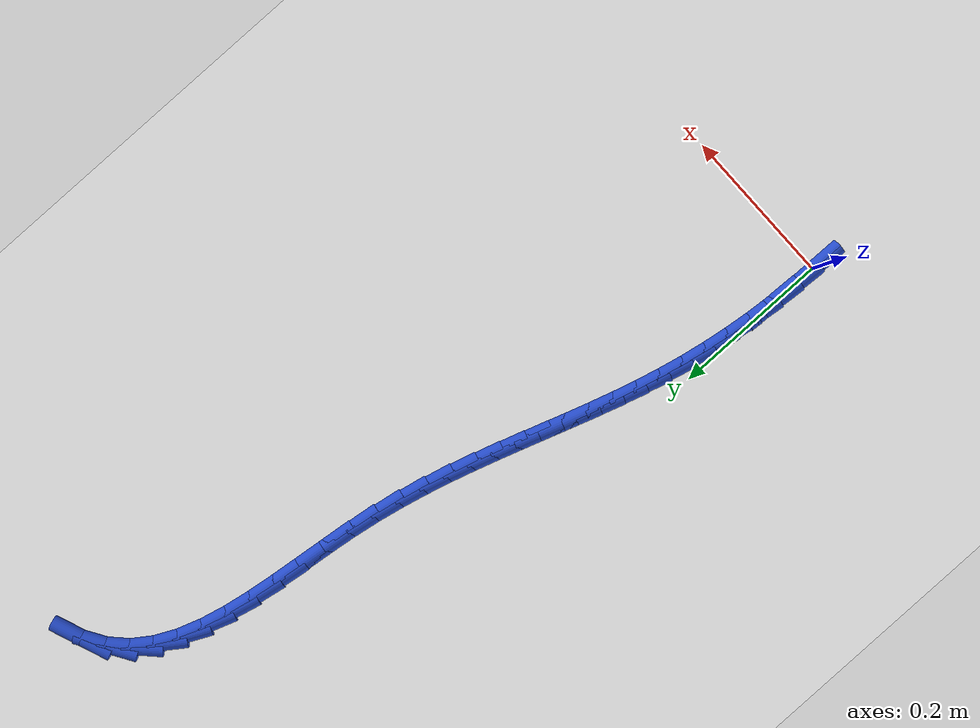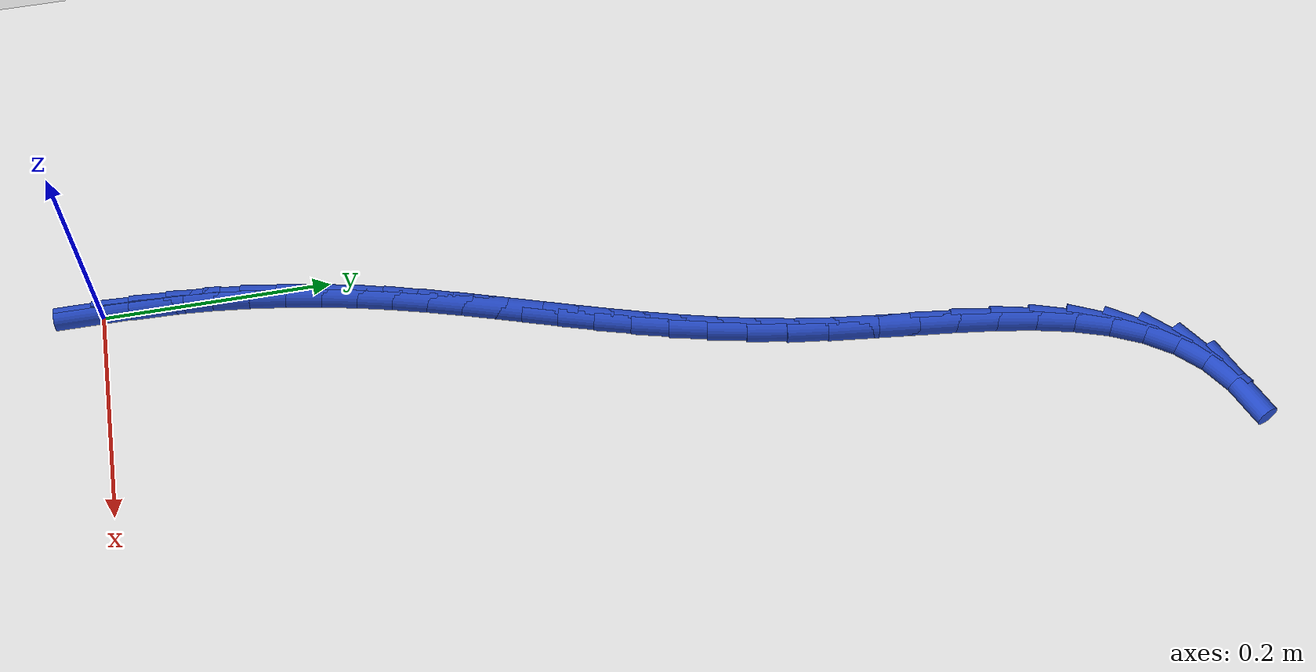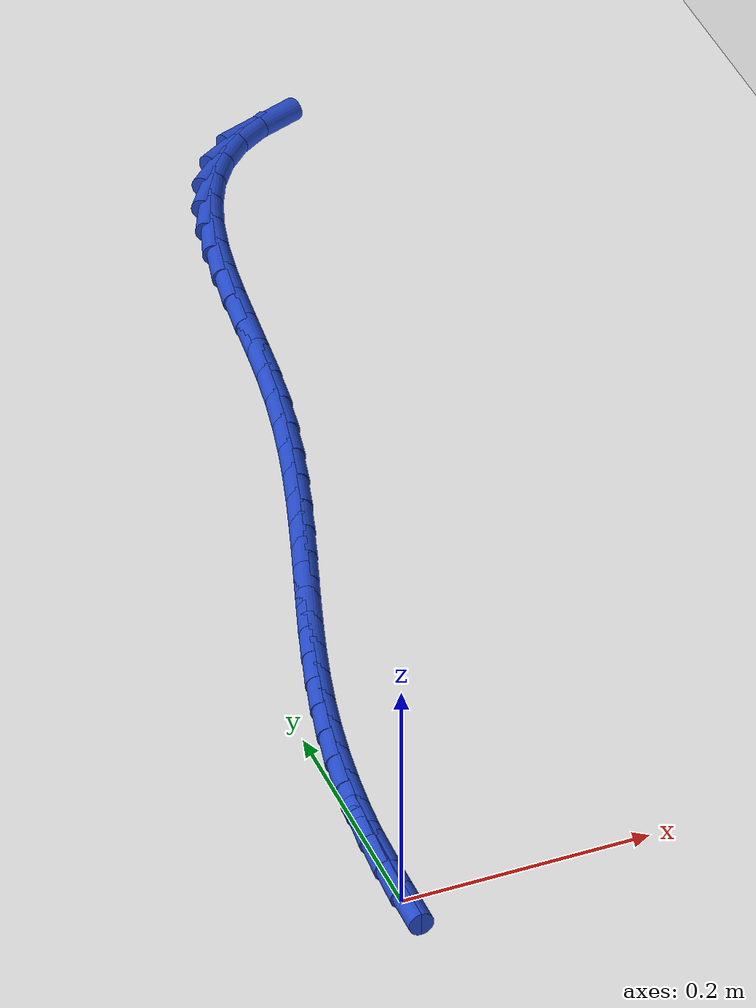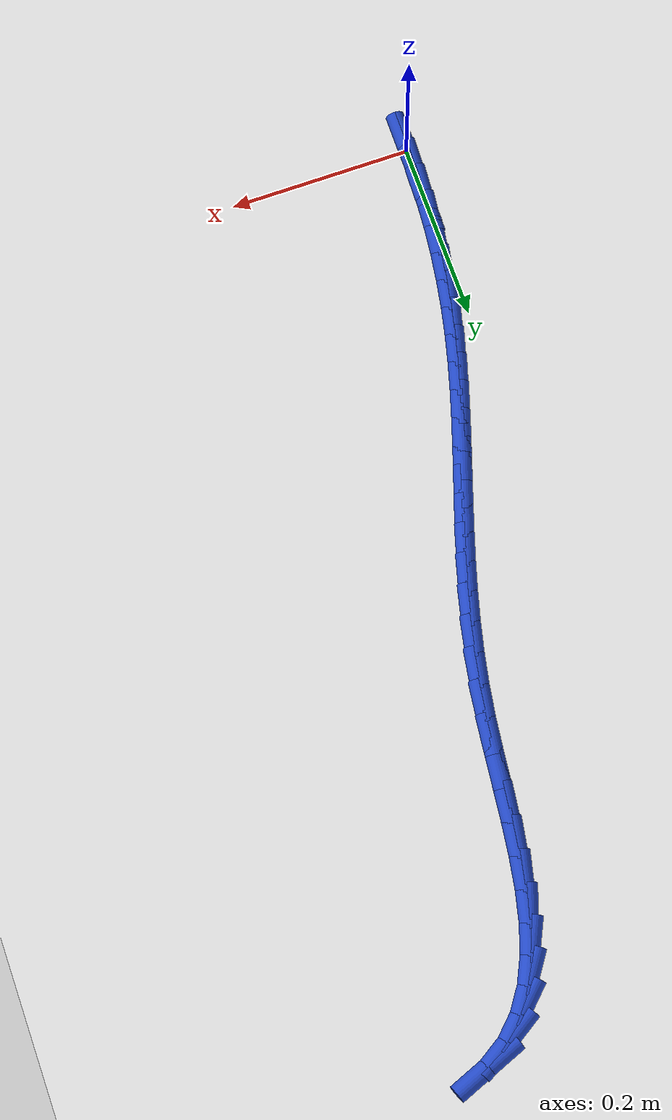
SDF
<sdf version="1.6">
 <world name="default">
  <model name="ground_plane">
   <static>1</static>
   <link name="link">
    <collision name="collision">
     <geometry><plane><normal>0 0 1</normal><size>100 100</size></plane></geometry>
     <surface><friction><ode><mu>100</mu><mu2>50</mu2></ode></friction></surface>
    </collision>
    <visual name="visual">
     <cast_shadows>0</cast_shadows>
     <geometry><plane><normal>0 0 1</normal><size>100 100</size></plane></geometry>
     <material>
      <script><uri>file://media/materials/scripts/gazebo.material</uri><name>Gazebo/WhiteGlow</name></script>
     </material>
    </visual>
   </link>
  </model>
  <model name="line">
   <link name="link_0">
    <pose>-7.37257477290143e-18 -5.551115123125783e-17 0.01 0 1.57 1.5632704173522833</pose>
    <collision name="collision">
     <geometry><cylinder><radius>0.01</radius><length>0.08</length></cylinder></geometry>
    </collision>
    <visual name="visual">
     <material>
      <script><name>Gazebo/Blue</name><uri>file://media/materials/scripts/gazebo.material</uri></script>
     </material>
     <geometry><cylinder><radius>0.01</radius><length>0.08</length></cylinder></geometry>
    </visual>
   </link>
   <link name="link_1">
    <pose>0.0002456686995575456 0.03264244185297479 0.01 0 1.57 1.5268009838545717</pose>
    <collision name="collision">
     <geometry><cylinder><radius>0.01</radius><length>0.08</length></cylinder></geometry>
    </collision>
    <visual name="visual">
     <material>
      <script><name>Gazebo/Blue</name><uri>file://media/materials/scripts/gazebo.material</uri></script>
     </material>
     <geometry><cylinder><radius>0.01</radius><length>0.08</length></cylinder></geometry>
    </visual>
   </link>
   <link name="link_2">
    <pose>0.0016749753505119883 0.06510915883912491 0.01 0 1.57 1.4911623278161554</pose>
    <collision name="collision">
     <geometry><cylinder><radius>0.01</radius><length>0.08</length></cylinder></geometry>
    </collision>
    <visual name="visual">
     <material>
      <script><name>Gazebo/Blue</name><uri>file://media/materials/scripts/gazebo.material</uri></script>
     </material>
     <geometry><cylinder><radius>0.01</radius><length>0.08</length></cylinder></geometry>
    </visual>
   </link>
   <link name="link_3">
    <pose>0.00424755348249707 0.09734586426357598 0.01 0 1.57 1.4562697613169648</pose>
    <collision name="collision">
     <geometry><cylinder><radius>0.01</radius><length>0.08</length></cylinder></geometry>
    </collision>
    <visual name="visual">
     <material>
      <script><name>Gazebo/Blue</name><uri>file://media/materials/scripts/gazebo.material</uri></script>
     </material>
     <geometry><cylinder><radius>0.01</radius><length>0.08</length></cylinder></geometry>
    </visual>
   </link>
   <link name="link_4">
    <pose>0.007923036625146547 0.12929827143145375 0.01 0 1.57 1.4220317220771173</pose>
    <collision name="collision">
     <geometry><cylinder><radius>0.01</radius><length>0.08</length></cylinder></geometry>
    </collision>
    <visual name="visual">
     <material>
      <script><name>Gazebo/Blue</name><uri>file://media/materials/scripts/gazebo.material</uri></script>
     </material>
     <geometry><cylinder><radius>0.01</radius><length>0.08</length></cylinder></geometry>
    </visual>
   </link>
   <link name="link_5">
    <pose>0.012661058308094168 0.16091209364788384 0.01 0 1.57 1.3883502762425861</pose>
    <collision name="collision">
     <geometry><cylinder><radius>0.01</radius><length>0.08</length></cylinder></geometry>
    </collision>
    <visual name="visual">
     <material>
      <script><name>Gazebo/Blue</name><uri>file://media/materials/scripts/gazebo.material</uri></script>
     </material>
     <geometry><cylinder><radius>0.01</radius><length>0.08</length></cylinder></geometry>
    </visual>
   </link>
   <link name="link_6">
    <pose>0.018421252060973694 0.19213304421799213 0.01 0 1.57 1.3551213344674293</pose>
    <collision name="collision">
     <geometry><cylinder><radius>0.01</radius><length>0.08</length></cylinder></geometry>
    </collision>
    <visual name="visual">
     <material>
      <script><name>Gazebo/Blue</name><uri>file://media/materials/scripts/gazebo.material</uri></script>
     </material>
     <geometry><cylinder><radius>0.01</radius><length>0.08</length></cylinder></geometry>
    </visual>
   </link>
   <link name="link_7">
    <pose>0.025163251369510278 0.22290683650883564 0.01 0 1.57 1.3231857685717456</pose>
    <collision name="collision">
     <geometry><cylinder><radius>0.01</radius><length>0.08</length></cylinder></geometry>
    </collision>
    <visual name="visual">
     <material>
      <script><name>Gazebo/Blue</name><uri>file://media/materials/scripts/gazebo.material</uri></script>
     </material>
     <geometry><cylinder><radius>0.01</radius><length>0.08</length></cylinder></geometry>
    </visual>
   </link>
   <link name="link_8">
    <pose>0.032824101511070305 0.25321104376012543 0.01 0 1.57 1.2963018387225682</pose>
    <collision name="collision">
     <geometry><cylinder><radius>0.01</radius><length>0.08</length></cylinder></geometry>
    </collision>
    <visual name="visual">
     <material>
      <script><name>Gazebo/Blue</name><uri>file://media/materials/scripts/gazebo.material</uri></script>
     </material>
     <geometry><cylinder><radius>0.01</radius><length>0.08</length></cylinder></geometry>
    </visual>
   </link>
   <link name="link_9">
    <pose>0.041253855787582 0.2831459383303042 0.01 0 1.57 1.2756622982968644</pose>
    <collision name="collision">
     <geometry><cylinder><radius>0.01</radius><length>0.08</length></cylinder></geometry>
    </collision>
    <visual name="visual">
     <material>
      <script><name>Gazebo/Blue</name><uri>file://media/materials/scripts/gazebo.material</uri></script>
     </material>
     <geometry><cylinder><radius>0.01</radius><length>0.08</length></cylinder></geometry>
    </visual>
   </link>
   <link name="link_10">
    <pose>0.05028162869394227 0.31284132602796483 0.01 0 1.57 1.26147710530987</pose>
    <collision name="collision">
     <geometry><cylinder><radius>0.01</radius><length>0.08</length></cylinder></geometry>
    </collision>
    <visual name="visual">
     <material>
      <script><name>Gazebo/Blue</name><uri>file://media/materials/scripts/gazebo.material</uri></script>
     </material>
     <geometry><cylinder><radius>0.01</radius><length>0.08</length></cylinder></geometry>
    </visual>
   </link>
   <link name="link_11">
    <pose>0.05973653472504801 0.3424270126616997 0.01 0 1.57 1.253839580025563</pose>
    <collision name="collision">
     <geometry><cylinder><radius>0.01</radius><length>0.08</length></cylinder></geometry>
    </collision>
    <visual name="visual">
     <material>
      <script><name>Gazebo/Blue</name><uri>file://media/materials/scripts/gazebo.material</uri></script>
     </material>
     <geometry><cylinder><radius>0.01</radius><length>0.08</length></cylinder></geometry>
    </visual>
   </link>
   <link name="link_12">
    <pose>0.06944768837579615 0.3720328040401017 0.01 0 1.57 1.252741911935959</pose>
    <collision name="collision">
     <geometry><cylinder><radius>0.01</radius><length>0.08</length></cylinder></geometry>
    </collision>
    <visual name="visual">
     <material>
      <script><name>Gazebo/Blue</name><uri>file://media/materials/scripts/gazebo.material</uri></script>
     </material>
     <geometry><cylinder><radius>0.01</radius><length>0.08</length></cylinder></geometry>
    </visual>
   </link>
   <link name="link_13">
    <pose>0.07924420414108356 0.40178850597176335 0.01 0 1.57 1.2580864603284783</pose>
    <collision name="collision">
     <geometry><cylinder><radius>0.01</radius><length>0.08</length></cylinder></geometry>
    </collision>
    <visual name="visual">
     <material>
      <script><name>Gazebo/Blue</name><uri>file://media/materials/scripts/gazebo.material</uri></script>
     </material>
     <geometry><cylinder><radius>0.01</radius><length>0.08</length></cylinder></geometry>
    </visual>
   </link>
   <link name="link_14">
    <pose>0.08895519651580716 0.4318239242652773 0.01 0 1.57 1.269691735281175</pose>
    <collision name="collision">
     <geometry><cylinder><radius>0.01</radius><length>0.08</length></cylinder></geometry>
    </collision>
    <visual name="visual">
     <material>
      <script><name>Gazebo/Blue</name><uri>file://media/materials/scripts/gazebo.material</uri></script>
     </material>
     <geometry><cylinder><radius>0.01</radius><length>0.08</length></cylinder></geometry>
    </visual>
   </link>
   <link name="link_15">
    <pose>0.09840977999486385 0.4622688647292362 0.01 0 1.57 1.2872934140344503</pose>
    <collision name="collision">
     <geometry><cylinder><radius>0.01</radius><length>0.08</length></cylinder></geometry>
    </collision>
    <visual name="visual">
     <material>
      <script><name>Gazebo/Blue</name><uri>file://media/materials/scripts/gazebo.material</uri></script>
     </material>
     <geometry><cylinder><radius>0.01</radius><length>0.08</length></cylinder></geometry>
    </visual>
   </link>
   <link name="link_16">
    <pose>0.10743706907315051 0.4932531331722326 0.01 0 1.57 1.3105419493037958</pose>
    <collision name="collision">
     <geometry><cylinder><radius>0.01</radius><length>0.08</length></cylinder></geometry>
    </collision>
    <visual name="visual">
     <material>
      <script><name>Gazebo/Blue</name><uri>file://media/materials/scripts/gazebo.material</uri></script>
     </material>
     <geometry><cylinder><radius>0.01</radius><length>0.08</length></cylinder></geometry>
    </visual>
   </link>
   <link name="link_17">
    <pose>0.11586617824556412 0.5249065354028596 0.01 0 1.57 1.338999227544284</pose>
    <collision name="collision">
     <geometry><cylinder><radius>0.01</radius><length>0.08</length></cylinder></geometry>
    </collision>
    <visual name="visual">
     <material>
      <script><name>Gazebo/Blue</name><uri>file://media/materials/scripts/gazebo.material</uri></script>
     </material>
     <geometry><cylinder><radius>0.01</radius><length>0.08</length></cylinder></geometry>
    </visual>
   </link>
   <link name="link_18">
    <pose>0.12352622200700154 0.5573588772297094 0.01 0 1.57 1.3721372610559748</pose>
    <collision name="collision">
     <geometry><cylinder><radius>0.01</radius><length>0.08</length></cylinder></geometry>
    </collision>
    <visual name="visual">
     <material>
      <script><name>Gazebo/Blue</name><uri>file://media/materials/scripts/gazebo.material</uri></script>
     </material>
     <geometry><cylinder><radius>0.01</radius><length>0.08</length></cylinder></geometry>
    </visual>
   </link>
   <link name="link_19">
    <pose>0.1302463148523597 0.590739964461375 0.01 0 1.57 1.4093081269379566</pose>
    <collision name="collision">
     <geometry><cylinder><radius>0.01</radius><length>0.08</length></cylinder></geometry>
    </collision>
    <visual name="visual">
     <material>
      <script><name>Gazebo/Blue</name><uri>file://media/materials/scripts/gazebo.material</uri></script>
     </material>
     <geometry><cylinder><radius>0.01</radius><length>0.08</length></cylinder></geometry>
    </visual>
   </link>
   <link name="link_20">
    <pose>0.1358566157395685 0.6251786825634659 0.01 0 1.57 1.4431699990393103</pose>
    <collision name="collision">
     <geometry><cylinder><radius>0.01</radius><length>0.08</length></cylinder></geometry>
    </collision>
    <visual name="visual">
     <material>
      <script><name>Gazebo/Blue</name><uri>file://media/materials/scripts/gazebo.material</uri></script>
     </material>
     <geometry><cylinder><radius>0.01</radius><length>0.08</length></cylinder></geometry>
    </visual>
   </link>
   <link name="link_21">
    <pose>0.14040370964791052 0.6606132102329533 0.01 0 1.57 1.4596717704684488</pose>
    <collision name="collision">
     <geometry><cylinder><radius>0.01</radius><length>0.08</length></cylinder></geometry>
    </collision>
    <visual name="visual">
     <material>
      <script><name>Gazebo/Blue</name><uri>file://media/materials/scripts/gazebo.material</uri></script>
     </material>
     <geometry><cylinder><radius>0.01</radius><length>0.08</length></cylinder></geometry>
    </visual>
   </link>
   <link name="link_22">
    <pose>0.1444146238691144 0.6965583778080858 0.01 0 1.57 1.458049661329926</pose>
    <collision name="collision">
     <geometry><cylinder><radius>0.01</radius><length>0.08</length></cylinder></geometry>
    </collision>
    <visual name="visual">
     <material>
      <script><name>Gazebo/Blue</name><uri>file://media/materials/scripts/gazebo.material</uri></script>
     </material>
     <geometry><cylinder><radius>0.01</radius><length>0.08</length></cylinder></geometry>
    </visual>
   </link>
   <link name="link_23">
    <pose>0.14848101732431127 0.7324720645769656 0.01 0 1.57 1.4382025285937923</pose>
    <collision name="collision">
     <geometry><cylinder><radius>0.01</radius><length>0.08</length></cylinder></geometry>
    </collision>
    <visual name="visual">
     <material>
      <script><name>Gazebo/Blue</name><uri>file://media/materials/scripts/gazebo.material</uri></script>
     </material>
     <geometry><cylinder><radius>0.01</radius><length>0.08</length></cylinder></geometry>
    </visual>
   </link>
   <link name="link_24">
    <pose>0.15319454893463189 0.7678121498276936 0.01 0 1.57 1.398597980906987</pose>
    <collision name="collision">
     <geometry><cylinder><radius>0.01</radius><length>0.08</length></cylinder></geometry>
    </collision>
    <visual name="visual">
     <material>
      <script><name>Gazebo/Blue</name><uri>file://media/materials/scripts/gazebo.material</uri></script>
     </material>
     <geometry><cylinder><radius>0.01</radius><length>0.08</length></cylinder></geometry>
    </visual>
   </link>
   <link name="link_25">
    <pose>0.15914687762120733 0.8020365128483721 0.01 0 1.57 1.336214921331327</pose>
    <collision name="collision">
     <geometry><cylinder><radius>0.01</radius><length>0.08</length></cylinder></geometry>
    </collision>
    <visual name="visual">
     <material>
      <script><name>Gazebo/Blue</name><uri>file://media/materials/scripts/gazebo.material</uri></script>
     </material>
     <geometry><cylinder><radius>0.01</radius><length>0.08</length></cylinder></geometry>
    </visual>
   </link>
   <link name="link_26">
    <pose>0.16692966230516856 0.8346030329271025 0.01 0 1.57 1.246596308479444</pose>
    <collision name="collision">
     <geometry><cylinder><radius>0.01</radius><length>0.08</length></cylinder></geometry>
    </collision>
    <visual name="visual">
     <material>
      <script><name>Gazebo/Blue</name><uri>file://media/materials/scripts/gazebo.material</uri></script>
     </material>
     <geometry><cylinder><radius>0.01</radius><length>0.08</length></cylinder></geometry>
    </visual>
   </link>
   <link name="link_27">
    <pose>0.1771345619076465 0.8649695893519866 0.01 0 1.57 1.1244854717149042</pose>
    <collision name="collision">
     <geometry><cylinder><radius>0.01</radius><length>0.08</length></cylinder></geometry>
    </collision>
    <visual name="visual">
     <material>
      <script><name>Gazebo/Blue</name><uri>file://media/materials/scripts/gazebo.material</uri></script>
     </material>
     <geometry><cylinder><radius>0.01</radius><length>0.08</length></cylinder></geometry>
    </visual>
   </link>
   <link name="link_28">
    <pose>0.19035323534977217 0.8925940614111261 0.01 0 1.57 0.9659976913463877</pose>
    <collision name="collision">
     <geometry><cylinder><radius>0.01</radius><length>0.08</length></cylinder></geometry>
    </collision>
    <visual name="visual">
     <material>
      <script><name>Gazebo/Blue</name><uri>file://media/materials/scripts/gazebo.material</uri></script>
     </material>
     <geometry><cylinder><radius>0.01</radius><length>0.08</length></cylinder></geometry>
    </visual>
   </link>
   <link name="link_29">
    <pose>0.20717734155267659 0.9169343283926229 0.01 0 1.57 0.7731860584852928</pose>
    <collision name="collision">
     <geometry><cylinder><radius>0.01</radius><length>0.08</length></cylinder></geometry>
    </collision>
    <visual name="visual">
     <material>
      <script><name>Gazebo/Blue</name><uri>file://media/materials/scripts/gazebo.material</uri></script>
     </material>
     <geometry><cylinder><radius>0.01</radius><length>0.08</length></cylinder></geometry>
    </visual>
   </link>
   <link name="link_30">
    <pose>0.22819853943749063 0.9374482695845785 0.01 0 1.57 0.5593678392755799</pose>
    <collision name="collision">
     <geometry><cylinder><radius>0.01</radius><length>0.08</length></cylinder></geometry>
    </collision>
    <visual name="visual">
     <material>
      <script><name>Gazebo/Blue</name><uri>file://media/materials/scripts/gazebo.material</uri></script>
     </material>
     <geometry><cylinder><radius>0.01</radius><length>0.08</length></cylinder></geometry>
    </visual>
   </link>
   <link name="link_31">
    <pose>0.25399944191988844 0.9536014210547102 0.01 0 1.57 0.3672177687692208</pose>
    <collision name="collision">
     <geometry><cylinder><radius>0.01</radius><length>0.08</length></cylinder></geometry>
    </collision>
    <visual name="visual">
     <material>
      <script><name>Gazebo/Blue</name><uri>file://media/materials/scripts/gazebo.material</uri></script>
     </material>
     <geometry><cylinder><radius>0.01</radius><length>0.08</length></cylinder></geometry>
    </visual>
   </link>
   <link name="link_280">
    <pose>-2.211772431870429e-17 4.85722573273506e-17 0.01 0 1.57 1.5624025132909483</pose>
    <collision name="collision">
     <geometry><cylinder><radius>0.01</radius><length>0.08</length></cylinder></geometry>
    </collision>
    <visual name="visual">
     <material>
      <script><name>Gazebo/Blue</name><uri>file://media/materials/scripts/gazebo.material</uri></script>
     </material>
     <geometry><cylinder><radius>0.01</radius><length>0.08</length></cylinder></geometry>
    </visual>
   </link>
   <link name="link_281">
    <pose>0.0002738551189871855 0.032625062165109256 0.01 0 1.57 1.5205493195987925</pose>
    <collision name="collision">
     <geometry><cylinder><radius>0.01</radius><length>0.08</length></cylinder></geometry>
    </collision>
    <visual name="visual">
     <material>
      <script><name>Gazebo/Blue</name><uri>file://media/materials/scripts/gazebo.material</uri></script>
     </material>
     <geometry><cylinder><radius>0.01</radius><length>0.08</length></cylinder></geometry>
    </visual>
   </link>
   <link name="link_282">
    <pose>0.0019004667059492027 0.06497012133620057 0.01 0 1.57 1.541553270080204</pose>
    <collision name="collision">
     <geometry><cylinder><radius>0.01</radius><length>0.08</length></cylinder></geometry>
    </collision>
    <visual name="visual">
     <material>
      <script><name>Gazebo/Blue</name><uri>file://media/materials/scripts/gazebo.material</uri></script>
     </material>
     <geometry><cylinder><radius>0.01</radius><length>0.08</length></cylinder></geometry>
    </visual>
   </link>
  </model>
 </world>
</sdf>
